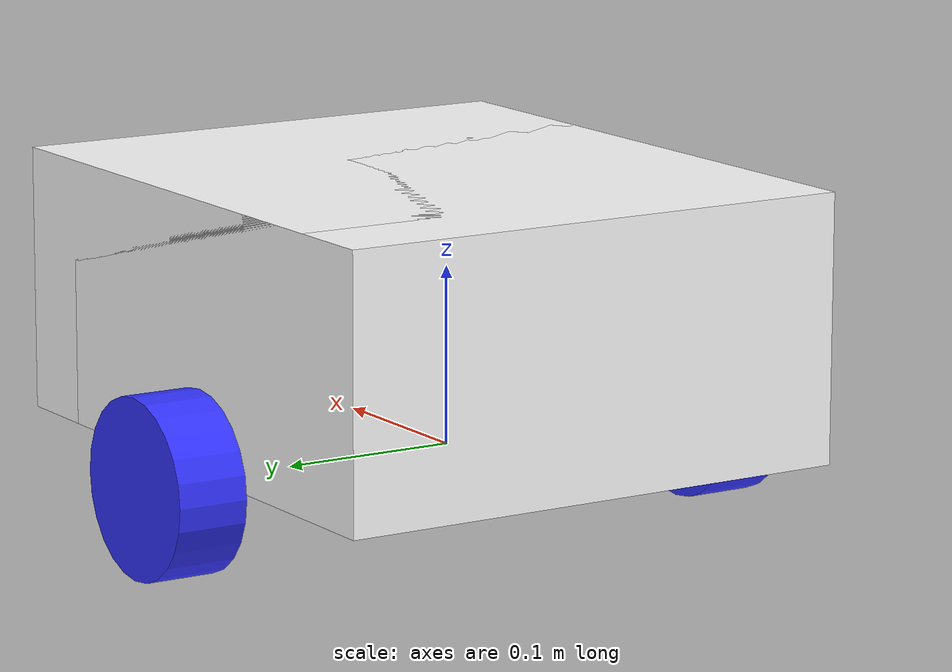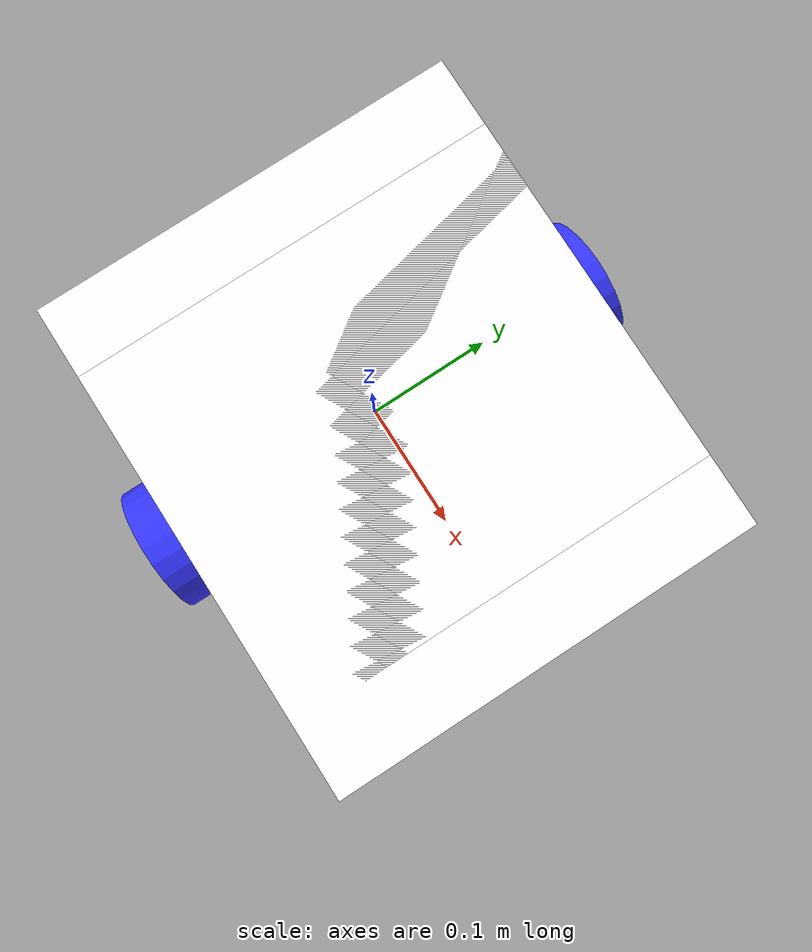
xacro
<?xml version="1.0"?>
<robot xmlns:xacro="http://www.ros.org/wiki/xacro">

    <xacro:include filename="inertial_macros.xacro"/>

    <!-- Define materials -->
    <material name="white">
        <color rgba="1 1 1 1"/>
    </material>

    <material name="orange">
        <color rgba="1 0.3 0.1 1"/>
    </material>

    <material name="blue">
        <color rgba="0.2 0.2 1 1"/>
    </material>

    <material name="black">
        <color rgba="0 0 0 1"/>
    </material>

    <!-- Define links -->
    <link name="base_link">
        <visual>
            <origin xyz="0 0 0.075" rpy="0 0 0"/>
            <geometry>
                <box size="0.3 0.3 0.15"/>
            </geometry>
            <material name="white"/>
        </visual>
    </link>

    <link name="chassis">
        <visual>
            <origin xyz="0.15 0 0.075" rpy="0 0 0"/>
            <geometry>
                <box size="0.3 0.3 0.15"/>
            </geometry>
            <material name="white"/>
        </visual>
        <collision>
            <origin xyz="0.15 0 0.075" rpy="0 0 0"/>
            <geometry>
                <box size="0.3 0.3 0.15"/>
            </geometry>
        </collision>
        <xacro:inertial_box mass="0.5" x="0.3" y="0.3" z="0.15">
            <origin xyz="0.15 0 0.075" rpy="0 0 0"/>
        </xacro:inertial_box>
    </link>
    <gazebo reference="chassis">
        <material>Gazebo/white</material>

    </gazebo>

    <!-- Define joints -->
    <joint name="chassis_joint" type="fixed">
        <parent link="base_link"/>
        <child link="chassis"/>
        <origin xyz="-0.1 0 0"/>
    </joint>

    <!-- LEFT WHEEL LINK -->
    <link name="left_wheel">
        <visual>
            <origin xyz="0 0 0" rpy="0 0 0"/>
            <geometry>
                <cylinder radius="0.05" length="0.04"/>
            </geometry>
            <material name="blue"/>
        </visual>
        <collision>
            <origin xyz="0 0 0" rpy="0 0 0"/>
            <geometry>
                <cylinder radius="0.05" length="0.04"/>
            </geometry>
        </collision>
        <xacro:inertial_cylinder mass="0.1" length="0.04" radius="0.05">
            <origin xyz="0 0 0" rpy="0 0 0"/>
        </xacro:inertial_cylinder>
    </link>

    <gazebo reference="left_wheel">
        <material>Gazebo/Blue</material>
    </gazebo>

    <!-- RIGHT WHEEL LINK -->
    <link name="right_wheel">
        <visual>
            <origin xyz="0 0 0" rpy="0 0 0"/>
            <geometry>
                <cylinder radius="0.05" length="0.04"/>
            </geometry>
            <material name="blue"/>
        </visual>
        <collision>
            <origin xyz="0 0 0" rpy="0 0 0"/>
            <geometry>
                <cylinder radius="0.05" length="0.04"/>
            </geometry>
        </collision>
        <xacro:inertial_cylinder mass="0.1" length="0.04" radius="0.05">
            <origin xyz="0 0 0" rpy="0 0 0"/>
        </xacro:inertial_cylinder>
    </link>
    <gazebo reference="right_wheel">
        <material>Gazebo/Blue</material>
    </gazebo>

    <!-- LEFT WHEEL JOINT -->
    <joint name="left_wheel_joint" type="continuous">
        <parent link="base_link"/>
        <child link="left_wheel"/>
        <origin xyz="0 0.175 0" rpy="-${pi/2} 0 0"/>
        <axis xyz="0 0 1"/>
    </joint>

    <!-- RIGHT WHEEL JOINT -->
    <joint name="right_wheel_joint" type="continuous">
        <parent link="base_link"/>
        <child link="right_wheel"/>
        <origin xyz="0 -0.175 0" rpy="${pi/2} 0 0"/>
        <axis xyz="0 0 -1"/>
    </joint>

    <!-- CASTER WHEEL LINK -->
    <joint name="caster_wheel_joint" type="fixed">
        <parent link="chassis"/>
        <child link="caster_wheel"/>
        <origin xyz="0.24 0 0"/>
    </joint>

    <link name="caster_wheel">
        <visual>
            <origin xyz="0 0 0" rpy="0 0 0"/>
            <geometry>
                <sphere radius="0.05"/>
            </geometry>
            <material name="black"/>
        </visual>
        <collision>
            <origin xyz="0 0 0" rpy="0 0 0"/>
            <geometry>
                <sphere radius="0.05"/>
            </geometry>
        </collision>
        <xacro:inertial_sphere mass="0.1" radius="0.05">
            <origin xyz="0 0 0" rpy="0 0 0"/>
        </xacro:inertial_sphere>
    </link>
    <gazebo reference="caster_wheel">
        <material>Gazebo/Black</material>
        <mu1 value="0.001"/>
        <mu2 value="0.001"/>

    </gazebo>

</robot>
